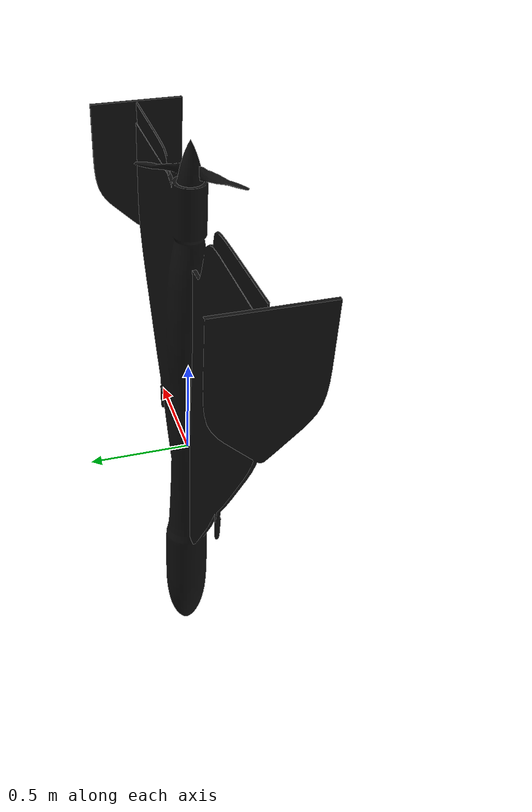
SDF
<?xml version="1.0"?>
<sdf version="1.10">
  <model name="shahed_136_stationary">
    <static>true</static>
    <link name="visual_link">
      <visual name="shahed_visual">
        <geometry>
          <mesh>
            <uri>model://shahed_136/meshes/Shahed-136.stl</uri>
            <scale>0.254033 0.274644 0.375123</scale>
          </mesh>
        </geometry>
        <material>
          <ambient>0.035 0.035 0.035 1</ambient>
          <diffuse>0.055 0.055 0.055 1</diffuse>
          <specular>0.08 0.08 0.08 1</specular>
        </material>
      </visual>
    </link>
  </model>
</sdf>
